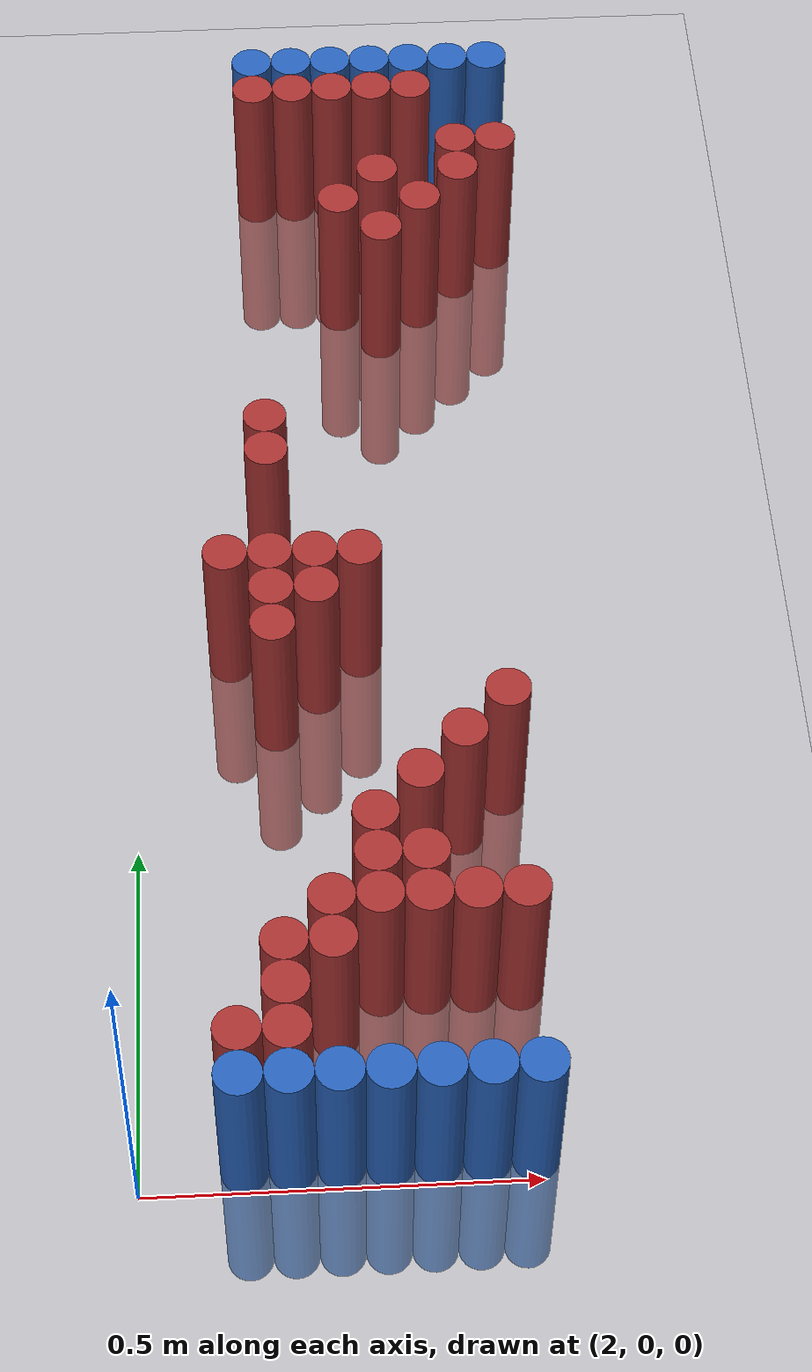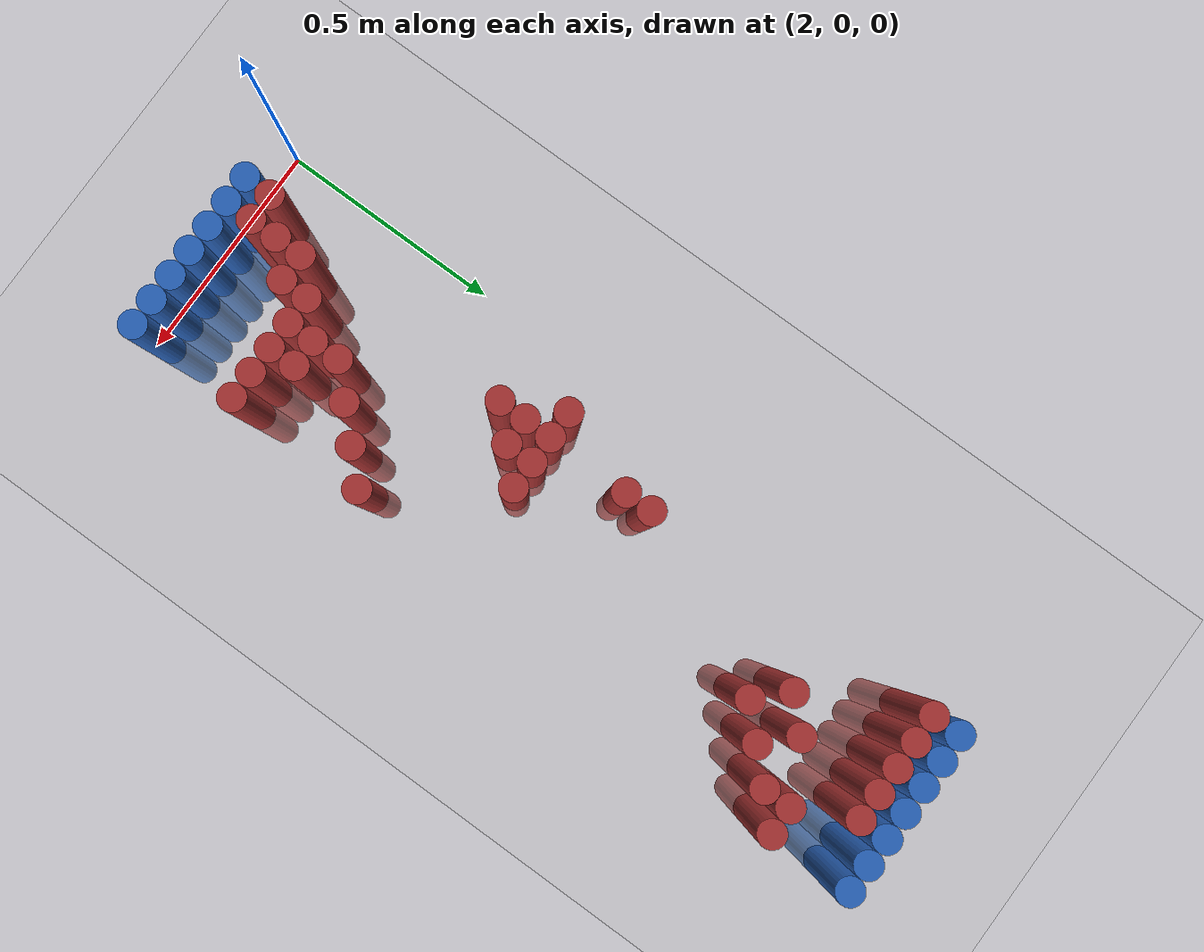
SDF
<sdf version="1.6">
 <world name="default">
  <model name="ground_plane">
   <static>1</static>
   <link name="link">
    <collision name="collision">
     <geometry><plane><normal>0 0 1</normal><size>100 100</size></plane></geometry>
     <surface><friction><ode><mu>100</mu><mu2>50</mu2></ode></friction></surface>
    </collision>
    <visual name="visual">
     <cast_shadows>0</cast_shadows>
     <geometry><plane><normal>0 0 1</normal><size>100 100</size></plane></geometry>
     <material>
      <script><uri>file://media/materials/scripts/gazebo.material</uri><name>Gazebo/Grey</name></script>
     </material>
    </visual>
   </link>
  </model>
  <model name="unit_cylinder_97">
   <static>1</static>
   <pose>2.190000 1.770000 0.000000 0.000000 0.000000 0.000000</pose>
   <link name="link">
    <inertial>
     <mass>1</mass>
     <inertia><ixx>0.145833</ixx><ixy>0</ixy><ixz>0</ixz><iyy>0.145833</iyy><iyz>0</iyz><izz>0.125</izz></inertia>
    </inertial>
    <collision name="collision">
     <geometry><cylinder><radius>0.030000</radius><length>0.5</length></cylinder></geometry>
    </collision>
    <visual name="visual">
     <geometry><cylinder><radius>0.030000</radius><length>0.5</length></cylinder></geometry>
     <material>
      <ambient>0.152000 0.379000 0.720000 1</ambient>
      <diffuse>0.152000 0.379000 0.720000 1</diffuse>
     </material>
     <material>
      <script><name>Gazebo/Grey</name><uri>file://media/materials/scripts/gazebo.material</uri></script>
     </material>
    </visual>
   </link>
  </model>
  <model name="unit_cylinder_98">
   <static>1</static>
   <pose>2.250000 1.770000 0.000000 0.000000 0.000000 0.000000</pose>
   <link name="link">
    <inertial>
     <mass>1</mass>
     <inertia><ixx>0.145833</ixx><ixy>0</ixy><ixz>0</ixz><iyy>0.145833</iyy><iyz>0</iyz><izz>0.125</izz></inertia>
    </inertial>
    <collision name="collision">
     <geometry><cylinder><radius>0.030000</radius><length>0.5</length></cylinder></geometry>
    </collision>
    <visual name="visual">
     <geometry><cylinder><radius>0.030000</radius><length>0.5</length></cylinder></geometry>
     <material>
      <ambient>0.152000 0.379000 0.720000 1</ambient>
      <diffuse>0.152000 0.379000 0.720000 1</diffuse>
     </material>
     <material>
      <script><name>Gazebo/Grey</name><uri>file://media/materials/scripts/gazebo.material</uri></script>
     </material>
    </visual>
   </link>
  </model>
  <model name="unit_cylinder_99">
   <static>1</static>
   <pose>2.310000 1.770000 0.000000 0.000000 0.000000 0.000000</pose>
   <link name="link">
    <inertial>
     <mass>1</mass>
     <inertia><ixx>0.145833</ixx><ixy>0</ixy><ixz>0</ixz><iyy>0.145833</iyy><iyz>0</iyz><izz>0.125</izz></inertia>
    </inertial>
    <collision name="collision">
     <geometry><cylinder><radius>0.030000</radius><length>0.5</length></cylinder></geometry>
    </collision>
    <visual name="visual">
     <geometry><cylinder><radius>0.030000</radius><length>0.5</length></cylinder></geometry>
     <material>
      <ambient>0.152000 0.379000 0.720000 1</ambient>
      <diffuse>0.152000 0.379000 0.720000 1</diffuse>
     </material>
     <material>
      <script><name>Gazebo/Grey</name><uri>file://media/materials/scripts/gazebo.material</uri></script>
     </material>
    </visual>
   </link>
  </model>
  <model name="unit_cylinder_100">
   <static>1</static>
   <pose>2.370000 1.770000 0.000000 0.000000 0.000000 0.000000</pose>
   <link name="link">
    <inertial>
     <mass>1</mass>
     <inertia><ixx>0.145833</ixx><ixy>0</ixy><ixz>0</ixz><iyy>0.145833</iyy><iyz>0</iyz><izz>0.125</izz></inertia>
    </inertial>
    <collision name="collision">
     <geometry><cylinder><radius>0.030000</radius><length>0.5</length></cylinder></geometry>
    </collision>
    <visual name="visual">
     <geometry><cylinder><radius>0.030000</radius><length>0.5</length></cylinder></geometry>
     <material>
      <ambient>0.152000 0.379000 0.720000 1</ambient>
      <diffuse>0.152000 0.379000 0.720000 1</diffuse>
     </material>
     <material>
      <script><name>Gazebo/Grey</name><uri>file://media/materials/scripts/gazebo.material</uri></script>
     </material>
    </visual>
   </link>
  </model>
  <model name="unit_cylinder_101">
   <static>1</static>
   <pose>2.430000 1.770000 0.000000 0.000000 0.000000 0.000000</pose>
   <link name="link">
    <inertial>
     <mass>1</mass>
     <inertia><ixx>0.145833</ixx><ixy>0</ixy><ixz>0</ixz><iyy>0.145833</iyy><iyz>0</iyz><izz>0.125</izz></inertia>
    </inertial>
    <collision name="collision">
     <geometry><cylinder><radius>0.030000</radius><length>0.5</length></cylinder></geometry>
    </collision>
    <visual name="visual">
     <geometry><cylinder><radius>0.030000</radius><length>0.5</length></cylinder></geometry>
     <material>
      <ambient>0.152000 0.379000 0.720000 1</ambient>
      <diffuse>0.152000 0.379000 0.720000 1</diffuse>
     </material>
     <material>
      <script><name>Gazebo/Grey</name><uri>file://media/materials/scripts/gazebo.material</uri></script>
     </material>
    </visual>
   </link>
  </model>
  <model name="unit_cylinder_102">
   <static>1</static>
   <pose>2.490000 1.770000 0.000000 0.000000 0.000000 0.000000</pose>
   <link name="link">
    <inertial>
     <mass>1</mass>
     <inertia><ixx>0.145833</ixx><ixy>0</ixy><ixz>0</ixz><iyy>0.145833</iyy><iyz>0</iyz><izz>0.125</izz></inertia>
    </inertial>
    <collision name="collision">
     <geometry><cylinder><radius>0.030000</radius><length>0.5</length></cylinder></geometry>
    </collision>
    <visual name="visual">
     <geometry><cylinder><radius>0.030000</radius><length>0.5</length></cylinder></geometry>
     <material>
      <ambient>0.152000 0.379000 0.720000 1</ambient>
      <diffuse>0.152000 0.379000 0.720000 1</diffuse>
     </material>
     <material>
      <script><name>Gazebo/Grey</name><uri>file://media/materials/scripts/gazebo.material</uri></script>
     </material>
    </visual>
   </link>
  </model>
  <model name="unit_cylinder_103">
   <static>1</static>
   <pose>2.550000 1.770000 0.000000 0.000000 0.000000 0.000000</pose>
   <link name="link">
    <inertial>
     <mass>1</mass>
     <inertia><ixx>0.145833</ixx><ixy>0</ixy><ixz>0</ixz><iyy>0.145833</iyy><iyz>0</iyz><izz>0.125</izz></inertia>
    </inertial>
    <collision name="collision">
     <geometry><cylinder><radius>0.030000</radius><length>0.5</length></cylinder></geometry>
    </collision>
    <visual name="visual">
     <geometry><cylinder><radius>0.030000</radius><length>0.5</length></cylinder></geometry>
     <material>
      <ambient>0.152000 0.379000 0.720000 1</ambient>
      <diffuse>0.152000 0.379000 0.720000 1</diffuse>
     </material>
     <material>
      <script><name>Gazebo/Grey</name><uri>file://media/materials/scripts/gazebo.material</uri></script>
     </material>
    </visual>
   </link>
  </model>
  <model name="unit_cylinder_126">
   <static>1</static>
   <pose>2.190000 1.710000 0.000000 0.000000 0.000000 0.000000</pose>
   <link name="link">
    <inertial>
     <mass>1</mass>
     <inertia><ixx>0.145833</ixx><ixy>0</ixy><ixz>0</ixz><iyy>0.145833</iyy><iyz>0</iyz><izz>0.125</izz></inertia>
    </inertial>
    <collision name="collision">
     <geometry><cylinder><radius>0.030000</radius><length>0.5</length></cylinder></geometry>
    </collision>
    <visual name="visual">
     <geometry><cylinder><radius>0.030000</radius><length>0.5</length></cylinder></geometry>
     <material>
      <ambient>0.648000 0.192000 0.192000 1</ambient>
      <diffuse>0.648000 0.192000 0.192000 1</diffuse>
     </material>
     <material>
      <script><name>Gazebo/Grey</name><uri>file://media/materials/scripts/gazebo.material</uri></script>
     </material>
    </visual>
   </link>
  </model>
  <model name="unit_cylinder_127">
   <static>1</static>
   <pose>2.250000 1.710000 0.000000 0.000000 0.000000 0.000000</pose>
   <link name="link">
    <inertial>
     <mass>1</mass>
     <inertia><ixx>0.145833</ixx><ixy>0</ixy><ixz>0</ixz><iyy>0.145833</iyy><iyz>0</iyz><izz>0.125</izz></inertia>
    </inertial>
    <collision name="collision">
     <geometry><cylinder><radius>0.030000</radius><length>0.5</length></cylinder></geometry>
    </collision>
    <visual name="visual">
     <geometry><cylinder><radius>0.030000</radius><length>0.5</length></cylinder></geometry>
     <material>
      <ambient>0.648000 0.192000 0.192000 1</ambient>
      <diffuse>0.648000 0.192000 0.192000 1</diffuse>
     </material>
     <material>
      <script><name>Gazebo/Grey</name><uri>file://media/materials/scripts/gazebo.material</uri></script>
     </material>
    </visual>
   </link>
  </model>
  <model name="unit_cylinder_128">
   <static>1</static>
   <pose>2.310000 1.710000 0.000000 0.000000 0.000000 0.000000</pose>
   <link name="link">
    <inertial>
     <mass>1</mass>
     <inertia><ixx>0.145833</ixx><ixy>0</ixy><ixz>0</ixz><iyy>0.145833</iyy><iyz>0</iyz><izz>0.125</izz></inertia>
    </inertial>
    <collision name="collision">
     <geometry><cylinder><radius>0.030000</radius><length>0.5</length></cylinder></geometry>
    </collision>
    <visual name="visual">
     <geometry><cylinder><radius>0.030000</radius><length>0.5</length></cylinder></geometry>
     <material>
      <ambient>0.648000 0.192000 0.192000 1</ambient>
      <diffuse>0.648000 0.192000 0.192000 1</diffuse>
     </material>
     <material>
      <script><name>Gazebo/Grey</name><uri>file://media/materials/scripts/gazebo.material</uri></script>
     </material>
    </visual>
   </link>
  </model>
  <model name="unit_cylinder_129">
   <static>1</static>
   <pose>2.370000 1.710000 0.000000 0.000000 0.000000 0.000000</pose>
   <link name="link">
    <inertial>
     <mass>1</mass>
     <inertia><ixx>0.145833</ixx><ixy>0</ixy><ixz>0</ixz><iyy>0.145833</iyy><iyz>0</iyz><izz>0.125</izz></inertia>
    </inertial>
    <collision name="collision">
     <geometry><cylinder><radius>0.030000</radius><length>0.5</length></cylinder></geometry>
    </collision>
    <visual name="visual">
     <geometry><cylinder><radius>0.030000</radius><length>0.5</length></cylinder></geometry>
     <material>
      <ambient>0.648000 0.192000 0.192000 1</ambient>
      <diffuse>0.648000 0.192000 0.192000 1</diffuse>
     </material>
     <material>
      <script><name>Gazebo/Grey</name><uri>file://media/materials/scripts/gazebo.material</uri></script>
     </material>
    </visual>
   </link>
  </model>
  <model name="unit_cylinder_130">
   <static>1</static>
   <pose>2.430000 1.710000 0.000000 0.000000 0.000000 0.000000</pose>
   <link name="link">
    <inertial>
     <mass>1</mass>
     <inertia><ixx>0.145833</ixx><ixy>0</ixy><ixz>0</ixz><iyy>0.145833</iyy><iyz>0</iyz><izz>0.125</izz></inertia>
    </inertial>
    <collision name="collision">
     <geometry><cylinder><radius>0.030000</radius><length>0.5</length></cylinder></geometry>
    </collision>
    <visual name="visual">
     <geometry><cylinder><radius>0.030000</radius><length>0.5</length></cylinder></geometry>
     <material>
      <ambient>0.648000 0.192000 0.192000 1</ambient>
      <diffuse>0.648000 0.192000 0.192000 1</diffuse>
     </material>
     <material>
      <script><name>Gazebo/Grey</name><uri>file://media/materials/scripts/gazebo.material</uri></script>
     </material>
    </visual>
   </link>
  </model>
  <model name="unit_cylinder_154">
   <static>1</static>
   <pose>2.490000 1.590000 0.000000 0.000000 0.000000 0.000000</pose>
   <link name="link">
    <inertial>
     <mass>1</mass>
     <inertia><ixx>0.145833</ixx><ixy>0</ixy><ixz>0</ixz><iyy>0.145833</iyy><iyz>0</iyz><izz>0.125</izz></inertia>
    </inertial>
    <collision name="collision">
     <geometry><cylinder><radius>0.030000</radius><length>0.5</length></cylinder></geometry>
    </collision>
    <visual name="visual">
     <geometry><cylinder><radius>0.030000</radius><length>0.5</length></cylinder></geometry>
     <material>
      <ambient>0.648000 0.192000 0.192000 1</ambient>
      <diffuse>0.648000 0.192000 0.192000 1</diffuse>
     </material>
     <material>
      <script><name>Gazebo/Grey</name><uri>file://media/materials/scripts/gazebo.material</uri></script>
     </material>
    </visual>
   </link>
  </model>
  <model name="unit_cylinder_155">
   <static>1</static>
   <pose>2.550000 1.590000 0.000000 0.000000 0.000000 0.000000</pose>
   <link name="link">
    <inertial>
     <mass>1</mass>
     <inertia><ixx>0.145833</ixx><ixy>0</ixy><ixz>0</ixz><iyy>0.145833</iyy><iyz>0</iyz><izz>0.125</izz></inertia>
    </inertial>
    <collision name="collision">
     <geometry><cylinder><radius>0.030000</radius><length>0.5</length></cylinder></geometry>
    </collision>
    <visual name="visual">
     <geometry><cylinder><radius>0.030000</radius><length>0.5</length></cylinder></geometry>
     <material>
      <ambient>0.648000 0.192000 0.192000 1</ambient>
      <diffuse>0.648000 0.192000 0.192000 1</diffuse>
     </material>
     <material>
      <script><name>Gazebo/Grey</name><uri>file://media/materials/scripts/gazebo.material</uri></script>
     </material>
    </visual>
   </link>
  </model>
  <model name="unit_cylinder_163">
   <static>1</static>
   <pose>2.370000 1.530000 0.000000 0.000000 0.000000 0.000000</pose>
   <link name="link">
    <inertial>
     <mass>1</mass>
     <inertia><ixx>0.145833</ixx><ixy>0</ixy><ixz>0</ixz><iyy>0.145833</iyy><iyz>0</iyz><izz>0.125</izz></inertia>
    </inertial>
    <collision name="collision">
     <geometry><cylinder><radius>0.030000</radius><length>0.5</length></cylinder></geometry>
    </collision>
    <visual name="visual">
     <geometry><cylinder><radius>0.030000</radius><length>0.5</length></cylinder></geometry>
     <material>
      <ambient>0.648000 0.192000 0.192000 1</ambient>
      <diffuse>0.648000 0.192000 0.192000 1</diffuse>
     </material>
     <material>
      <script><name>Gazebo/Grey</name><uri>file://media/materials/scripts/gazebo.material</uri></script>
     </material>
    </visual>
   </link>
  </model>
  <model name="unit_cylinder_164">
   <static>1</static>
   <pose>2.490000 1.530000 0.000000 0.000000 0.000000 0.000000</pose>
   <link name="link">
    <inertial>
     <mass>1</mass>
     <inertia><ixx>0.145833</ixx><ixy>0</ixy><ixz>0</ixz><iyy>0.145833</iyy><iyz>0</iyz><izz>0.125</izz></inertia>
    </inertial>
    <collision name="collision">
     <geometry><cylinder><radius>0.030000</radius><length>0.5</length></cylinder></geometry>
    </collision>
    <visual name="visual">
     <geometry><cylinder><radius>0.030000</radius><length>0.5</length></cylinder></geometry>
     <material>
      <ambient>0.648000 0.192000 0.192000 1</ambient>
      <diffuse>0.648000 0.192000 0.192000 1</diffuse>
     </material>
     <material>
      <script><name>Gazebo/Grey</name><uri>file://media/materials/scripts/gazebo.material</uri></script>
     </material>
    </visual>
   </link>
  </model>
  <model name="unit_cylinder_173">
   <static>1</static>
   <pose>2.310000 1.470000 0.000000 0.000000 0.000000 0.000000</pose>
   <link name="link">
    <inertial>
     <mass>1</mass>
     <inertia><ixx>0.145833</ixx><ixy>0</ixy><ixz>0</ixz><iyy>0.145833</iyy><iyz>0</iyz><izz>0.125</izz></inertia>
    </inertial>
    <collision name="collision">
     <geometry><cylinder><radius>0.030000</radius><length>0.5</length></cylinder></geometry>
    </collision>
    <visual name="visual">
     <geometry><cylinder><radius>0.030000</radius><length>0.5</length></cylinder></geometry>
     <material>
      <ambient>0.648000 0.192000 0.192000 1</ambient>
      <diffuse>0.648000 0.192000 0.192000 1</diffuse>
     </material>
     <material>
      <script><name>Gazebo/Grey</name><uri>file://media/materials/scripts/gazebo.material</uri></script>
     </material>
    </visual>
   </link>
  </model>
  <model name="unit_cylinder_174">
   <static>1</static>
   <pose>2.430000 1.470000 0.000000 0.000000 0.000000 0.000000</pose>
   <link name="link">
    <inertial>
     <mass>1</mass>
     <inertia><ixx>0.145833</ixx><ixy>0</ixy><ixz>0</ixz><iyy>0.145833</iyy><iyz>0</iyz><izz>0.125</izz></inertia>
    </inertial>
    <collision name="collision">
     <geometry><cylinder><radius>0.030000</radius><length>0.5</length></cylinder></geometry>
    </collision>
    <visual name="visual">
     <geometry><cylinder><radius>0.030000</radius><length>0.5</length></cylinder></geometry>
     <material>
      <ambient>0.648000 0.192000 0.192000 1</ambient>
      <diffuse>0.648000 0.192000 0.192000 1</diffuse>
     </material>
     <material>
      <script><name>Gazebo/Grey</name><uri>file://media/materials/scripts/gazebo.material</uri></script>
     </material>
    </visual>
   </link>
  </model>
  <model name="unit_cylinder_181">
   <static>1</static>
   <pose>2.370000 1.410000 0.000000 0.000000 0.000000 0.000000</pose>
   <link name="link">
    <inertial>
     <mass>1</mass>
     <inertia><ixx>0.145833</ixx><ixy>0</ixy><ixz>0</ixz><iyy>0.145833</iyy><iyz>0</iyz><izz>0.125</izz></inertia>
    </inertial>
    <collision name="collision">
     <geometry><cylinder><radius>0.030000</radius><length>0.5</length></cylinder></geometry>
    </collision>
    <visual name="visual">
     <geometry><cylinder><radius>0.030000</radius><length>0.5</length></cylinder></geometry>
     <material>
      <ambient>0.648000 0.192000 0.192000 1</ambient>
      <diffuse>0.648000 0.192000 0.192000 1</diffuse>
     </material>
     <material>
      <script><name>Gazebo/Grey</name><uri>file://media/materials/scripts/gazebo.material</uri></script>
     </material>
    </visual>
   </link>
  </model>
  <model name="unit_cylinder_193">
   <static>1</static>
   <pose>2.190000 1.050000 0.000000 0.000000 0.000000 0.000000</pose>
   <link name="link">
    <inertial>
     <mass>1</mass>
     <inertia><ixx>0.145833</ixx><ixy>0</ixy><ixz>0</ixz><iyy>0.145833</iyy><iyz>0</iyz><izz>0.125</izz></inertia>
    </inertial>
    <collision name="collision">
     <geometry><cylinder><radius>0.030000</radius><length>0.5</length></cylinder></geometry>
    </collision>
    <visual name="visual">
     <geometry><cylinder><radius>0.030000</radius><length>0.5</length></cylinder></geometry>
     <material>
      <ambient>0.648000 0.192000 0.192000 1</ambient>
      <diffuse>0.648000 0.192000 0.192000 1</diffuse>
     </material>
     <material>
      <script><name>Gazebo/Grey</name><uri>file://media/materials/scripts/gazebo.material</uri></script>
     </material>
    </visual>
   </link>
  </model>
  <model name="unit_cylinder_197">
   <static>1</static>
   <pose>2.190000 0.990000 0.000000 0.000000 0.000000 0.000000</pose>
   <link name="link">
    <inertial>
     <mass>1</mass>
     <inertia><ixx>0.145833</ixx><ixy>0</ixy><ixz>0</ixz><iyy>0.145833</iyy><iyz>0</iyz><izz>0.125</izz></inertia>
    </inertial>
    <collision name="collision">
     <geometry><cylinder><radius>0.030000</radius><length>0.5</length></cylinder></geometry>
    </collision>
    <visual name="visual">
     <geometry><cylinder><radius>0.030000</radius><length>0.5</length></cylinder></geometry>
     <material>
      <ambient>0.648000 0.192000 0.192000 1</ambient>
      <diffuse>0.648000 0.192000 0.192000 1</diffuse>
     </material>
     <material>
      <script><name>Gazebo/Grey</name><uri>file://media/materials/scripts/gazebo.material</uri></script>
     </material>
    </visual>
   </link>
  </model>
  <model name="unit_cylinder_204">
   <static>1</static>
   <pose>2.130000 0.810000 0.000000 0.000000 0.000000 0.000000</pose>
   <link name="link">
    <inertial>
     <mass>1</mass>
     <inertia><ixx>0.145833</ixx><ixy>0</ixy><ixz>0</ixz><iyy>0.145833</iyy><iyz>0</iyz><izz>0.125</izz></inertia>
    </inertial>
    <collision name="collision">
     <geometry><cylinder><radius>0.030000</radius><length>0.5</length></cylinder></geometry>
    </collision>
    <visual name="visual">
     <geometry><cylinder><radius>0.030000</radius><length>0.5</length></cylinder></geometry>
     <material>
      <ambient>0.648000 0.192000 0.192000 1</ambient>
      <diffuse>0.648000 0.192000 0.192000 1</diffuse>
     </material>
     <material>
      <script><name>Gazebo/Grey</name><uri>file://media/materials/scripts/gazebo.material</uri></script>
     </material>
    </visual>
   </link>
  </model>
  <model name="unit_cylinder_205">
   <static>1</static>
   <pose>2.190000 0.810000 0.000000 0.000000 0.000000 0.000000</pose>
   <link name="link">
    <inertial>
     <mass>1</mass>
     <inertia><ixx>0.145833</ixx><ixy>0</ixy><ixz>0</ixz><iyy>0.145833</iyy><iyz>0</iyz><izz>0.125</izz></inertia>
    </inertial>
    <collision name="collision">
     <geometry><cylinder><radius>0.030000</radius><length>0.5</length></cylinder></geometry>
    </collision>
    <visual name="visual">
     <geometry><cylinder><radius>0.030000</radius><length>0.5</length></cylinder></geometry>
     <material>
      <ambient>0.648000 0.192000 0.192000 1</ambient>
      <diffuse>0.648000 0.192000 0.192000 1</diffuse>
     </material>
     <material>
      <script><name>Gazebo/Grey</name><uri>file://media/materials/scripts/gazebo.material</uri></script>
     </material>
    </visual>
   </link>
  </model>
  <model name="unit_cylinder_206">
   <static>1</static>
   <pose>2.250000 0.810000 0.000000 0.000000 0.000000 0.000000</pose>
   <link name="link">
    <inertial>
     <mass>1</mass>
     <inertia><ixx>0.145833</ixx><ixy>0</ixy><ixz>0</ixz><iyy>0.145833</iyy><iyz>0</iyz><izz>0.125</izz></inertia>
    </inertial>
    <collision name="collision">
     <geometry><cylinder><radius>0.030000</radius><length>0.5</length></cylinder></geometry>
    </collision>
    <visual name="visual">
     <geometry><cylinder><radius>0.030000</radius><length>0.5</length></cylinder></geometry>
     <material>
      <ambient>0.648000 0.192000 0.192000 1</ambient>
      <diffuse>0.648000 0.192000 0.192000 1</diffuse>
     </material>
     <material>
      <script><name>Gazebo/Grey</name><uri>file://media/materials/scripts/gazebo.material</uri></script>
     </material>
    </visual>
   </link>
  </model>
  <model name="unit_cylinder_207">
   <static>1</static>
   <pose>2.310000 0.810000 0.000000 0.000000 0.000000 0.000000</pose>
   <link name="link">
    <inertial>
     <mass>1</mass>
     <inertia><ixx>0.145833</ixx><ixy>0</ixy><ixz>0</ixz><iyy>0.145833</iyy><iyz>0</iyz><izz>0.125</izz></inertia>
    </inertial>
    <collision name="collision">
     <geometry><cylinder><radius>0.030000</radius><length>0.5</length></cylinder></geometry>
    </collision>
    <visual name="visual">
     <geometry><cylinder><radius>0.030000</radius><length>0.5</length></cylinder></geometry>
     <material>
      <ambient>0.648000 0.192000 0.192000 1</ambient>
      <diffuse>0.648000 0.192000 0.192000 1</diffuse>
     </material>
     <material>
      <script><name>Gazebo/Grey</name><uri>file://media/materials/scripts/gazebo.material</uri></script>
     </material>
    </visual>
   </link>
  </model>
  <model name="unit_cylinder_210">
   <static>1</static>
   <pose>2.190000 0.750000 0.000000 0.000000 0.000000 0.000000</pose>
   <link name="link">
    <inertial>
     <mass>1</mass>
     <inertia><ixx>0.145833</ixx><ixy>0</ixy><ixz>0</ixz><iyy>0.145833</iyy><iyz>0</iyz><izz>0.125</izz></inertia>
    </inertial>
    <collision name="collision">
     <geometry><cylinder><radius>0.030000</radius><length>0.5</length></cylinder></geometry>
    </collision>
    <visual name="visual">
     <geometry><cylinder><radius>0.030000</radius><length>0.5</length></cylinder></geometry>
     <material>
      <ambient>0.648000 0.192000 0.192000 1</ambient>
      <diffuse>0.648000 0.192000 0.192000 1</diffuse>
     </material>
     <material>
      <script><name>Gazebo/Grey</name><uri>file://media/materials/scripts/gazebo.material</uri></script>
     </material>
    </visual>
   </link>
  </model>
  <model name="unit_cylinder_211">
   <static>1</static>
   <pose>2.250000 0.750000 0.000000 0.000000 0.000000 0.000000</pose>
   <link name="link">
    <inertial>
     <mass>1</mass>
     <inertia><ixx>0.145833</ixx><ixy>0</ixy><ixz>0</ixz><iyy>0.145833</iyy><iyz>0</iyz><izz>0.125</izz></inertia>
    </inertial>
    <collision name="collision">
     <geometry><cylinder><radius>0.030000</radius><length>0.5</length></cylinder></geometry>
    </collision>
    <visual name="visual">
     <geometry><cylinder><radius>0.030000</radius><length>0.5</length></cylinder></geometry>
     <material>
      <ambient>0.648000 0.192000 0.192000 1</ambient>
      <diffuse>0.648000 0.192000 0.192000 1</diffuse>
     </material>
     <material>
      <script><name>Gazebo/Grey</name><uri>file://media/materials/scripts/gazebo.material</uri></script>
     </material>
    </visual>
   </link>
  </model>
  <model name="unit_cylinder_216">
   <static>1</static>
   <pose>2.190000 0.690000 0.000000 0.000000 0.000000 0.000000</pose>
   <link name="link">
    <inertial>
     <mass>1</mass>
     <inertia><ixx>0.145833</ixx><ixy>0</ixy><ixz>0</ixz><iyy>0.145833</iyy><iyz>0</iyz><izz>0.125</izz></inertia>
    </inertial>
    <collision name="collision">
     <geometry><cylinder><radius>0.030000</radius><length>0.5</length></cylinder></geometry>
    </collision>
    <visual name="visual">
     <geometry><cylinder><radius>0.030000</radius><length>0.5</length></cylinder></geometry>
     <material>
      <ambient>0.648000 0.192000 0.192000 1</ambient>
      <diffuse>0.648000 0.192000 0.192000 1</diffuse>
     </material>
     <material>
      <script><name>Gazebo/Grey</name><uri>file://media/materials/scripts/gazebo.material</uri></script>
     </material>
    </visual>
   </link>
  </model>
  <model name="unit_cylinder_237">
   <static>1</static>
   <pose>2.490000 0.570000 0.000000 0.000000 0.000000 0.000000</pose>
   <link name="link">
    <inertial>
     <mass>1</mass>
     <inertia><ixx>0.145833</ixx><ixy>0</ixy><ixz>0</ixz><iyy>0.145833</iyy><iyz>0</iyz><izz>0.125</izz></inertia>
    </inertial>
    <collision name="collision">
     <geometry><cylinder><radius>0.030000</radius><length>0.5</length></cylinder></geometry>
    </collision>
    <visual name="visual">
     <geometry><cylinder><radius>0.030000</radius><length>0.5</length></cylinder></geometry>
     <material>
      <ambient>0.648000 0.192000 0.192000 1</ambient>
      <diffuse>0.648000 0.192000 0.192000 1</diffuse>
     </material>
     <material>
      <script><name>Gazebo/Grey</name><uri>file://media/materials/scripts/gazebo.material</uri></script>
     </material>
    </visual>
   </link>
  </model>
  <model name="unit_cylinder_249">
   <static>1</static>
   <pose>2.430000 0.510000 0.000000 0.000000 0.000000 0.000000</pose>
   <link name="link">
    <inertial>
     <mass>1</mass>
     <inertia><ixx>0.145833</ixx><ixy>0</ixy><ixz>0</ixz><iyy>0.145833</iyy><iyz>0</iyz><izz>0.125</izz></inertia>
    </inertial>
    <collision name="collision">
     <geometry><cylinder><radius>0.030000</radius><length>0.5</length></cylinder></geometry>
    </collision>
    <visual name="visual">
     <geometry><cylinder><radius>0.030000</radius><length>0.5</length></cylinder></geometry>
     <material>
      <ambient>0.648000 0.192000 0.192000 1</ambient>
      <diffuse>0.648000 0.192000 0.192000 1</diffuse>
     </material>
     <material>
      <script><name>Gazebo/Grey</name><uri>file://media/materials/scripts/gazebo.material</uri></script>
     </material>
    </visual>
   </link>
  </model>
  <model name="unit_cylinder_260">
   <static>1</static>
   <pose>2.370000 0.450000 0.000000 0.000000 0.000000 0.000000</pose>
   <link name="link">
    <inertial>
     <mass>1</mass>
     <inertia><ixx>0.145833</ixx><ixy>0</ixy><ixz>0</ixz><iyy>0.145833</iyy><iyz>0</iyz><izz>0.125</izz></inertia>
    </inertial>
    <collision name="collision">
     <geometry><cylinder><radius>0.030000</radius><length>0.5</length></cylinder></geometry>
    </collision>
    <visual name="visual">
     <geometry><cylinder><radius>0.030000</radius><length>0.5</length></cylinder></geometry>
     <material>
      <ambient>0.648000 0.192000 0.192000 1</ambient>
      <diffuse>0.648000 0.192000 0.192000 1</diffuse>
     </material>
     <material>
      <script><name>Gazebo/Grey</name><uri>file://media/materials/scripts/gazebo.material</uri></script>
     </material>
    </visual>
   </link>
  </model>
  <model name="unit_cylinder_267">
   <static>1</static>
   <pose>2.310000 0.390000 0.000000 0.000000 0.000000 0.000000</pose>
   <link name="link">
    <inertial>
     <mass>1</mass>
     <inertia><ixx>0.145833</ixx><ixy>0</ixy><ixz>0</ixz><iyy>0.145833</iyy><iyz>0</iyz><izz>0.125</izz></inertia>
    </inertial>
    <collision name="collision">
     <geometry><cylinder><radius>0.030000</radius><length>0.5</length></cylinder></geometry>
    </collision>
    <visual name="visual">
     <geometry><cylinder><radius>0.030000</radius><length>0.5</length></cylinder></geometry>
     <material>
      <ambient>0.648000 0.192000 0.192000 1</ambient>
      <diffuse>0.648000 0.192000 0.192000 1</diffuse>
     </material>
     <material>
      <script><name>Gazebo/Grey</name><uri>file://media/materials/scripts/gazebo.material</uri></script>
     </material>
    </visual>
   </link>
  </model>
  <model name="unit_cylinder_272">
   <static>1</static>
   <pose>2.310000 0.330000 0.000000 0.000000 0.000000 0.000000</pose>
   <link name="link">
    <inertial>
     <mass>1</mass>
     <inertia><ixx>0.145833</ixx><ixy>0</ixy><ixz>0</ixz><iyy>0.145833</iyy><iyz>0</iyz><izz>0.125</izz></inertia>
    </inertial>
    <collision name="collision">
     <geometry><cylinder><radius>0.030000</radius><length>0.5</length></cylinder></geometry>
    </collision>
    <visual name="visual">
     <geometry><cylinder><radius>0.030000</radius><length>0.5</length></cylinder></geometry>
     <material>
      <ambient>0.648000 0.192000 0.192000 1</ambient>
      <diffuse>0.648000 0.192000 0.192000 1</diffuse>
     </material>
     <material>
      <script><name>Gazebo/Grey</name><uri>file://media/materials/scripts/gazebo.material</uri></script>
     </material>
    </visual>
   </link>
  </model>
  <model name="unit_cylinder_273">
   <static>1</static>
   <pose>2.370000 0.330000 0.000000 0.000000 0.000000 0.000000</pose>
   <link name="link">
    <inertial>
     <mass>1</mass>
     <inertia><ixx>0.145833</ixx><ixy>0</ixy><ixz>0</ixz><iyy>0.145833</iyy><iyz>0</iyz><izz>0.125</izz></inertia>
    </inertial>
    <collision name="collision">
     <geometry><cylinder><radius>0.030000</radius><length>0.5</length></cylinder></geometry>
    </collision>
    <visual name="visual">
     <geometry><cylinder><radius>0.030000</radius><length>0.5</length></cylinder></geometry>
     <material>
      <ambient>0.648000 0.192000 0.192000 1</ambient>
      <diffuse>0.648000 0.192000 0.192000 1</diffuse>
     </material>
     <material>
      <script><name>Gazebo/Grey</name><uri>file://media/materials/scripts/gazebo.material</uri></script>
     </material>
    </visual>
   </link>
  </model>
  <model name="unit_cylinder_278">
   <static>1</static>
   <pose>2.250000 0.270000 0.000000 0.000000 0.000000 0.000000</pose>
   <link name="link">
    <inertial>
     <mass>1</mass>
     <inertia><ixx>0.145833</ixx><ixy>0</ixy><ixz>0</ixz><iyy>0.145833</iyy><iyz>0</iyz><izz>0.125</izz></inertia>
    </inertial>
    <collision name="collision">
     <geometry><cylinder><radius>0.030000</radius><length>0.5</length></cylinder></geometry>
    </collision>
    <visual name="visual">
     <geometry><cylinder><radius>0.030000</radius><length>0.5</length></cylinder></geometry>
     <material>
      <ambient>0.648000 0.192000 0.192000 1</ambient>
      <diffuse>0.648000 0.192000 0.192000 1</diffuse>
     </material>
     <material>
      <script><name>Gazebo/Grey</name><uri>file://media/materials/scripts/gazebo.material</uri></script>
     </material>
    </visual>
   </link>
  </model>
  <model name="unit_cylinder_279">
   <static>1</static>
   <pose>2.310000 0.270000 0.000000 0.000000 0.000000 0.000000</pose>
   <link name="link">
    <inertial>
     <mass>1</mass>
     <inertia><ixx>0.145833</ixx><ixy>0</ixy><ixz>0</ixz><iyy>0.145833</iyy><iyz>0</iyz><izz>0.125</izz></inertia>
    </inertial>
    <collision name="collision">
     <geometry><cylinder><radius>0.030000</radius><length>0.5</length></cylinder></geometry>
    </collision>
    <visual name="visual">
     <geometry><cylinder><radius>0.030000</radius><length>0.5</length></cylinder></geometry>
     <material>
      <ambient>0.648000 0.192000 0.192000 1</ambient>
      <diffuse>0.648000 0.192000 0.192000 1</diffuse>
     </material>
     <material>
      <script><name>Gazebo/Grey</name><uri>file://media/materials/scripts/gazebo.material</uri></script>
     </material>
    </visual>
   </link>
  </model>
  <model name="unit_cylinder_280">
   <static>1</static>
   <pose>2.370000 0.270000 0.000000 0.000000 0.000000 0.000000</pose>
   <link name="link">
    <inertial>
     <mass>1</mass>
     <inertia><ixx>0.145833</ixx><ixy>0</ixy><ixz>0</ixz><iyy>0.145833</iyy><iyz>0</iyz><izz>0.125</izz></inertia>
    </inertial>
    <collision name="collision">
     <geometry><cylinder><radius>0.030000</radius><length>0.5</length></cylinder></geometry>
    </collision>
    <visual name="visual">
     <geometry><cylinder><radius>0.030000</radius><length>0.5</length></cylinder></geometry>
     <material>
      <ambient>0.648000 0.192000 0.192000 1</ambient>
      <diffuse>0.648000 0.192000 0.192000 1</diffuse>
     </material>
     <material>
      <script><name>Gazebo/Grey</name><uri>file://media/materials/scripts/gazebo.material</uri></script>
     </material>
    </visual>
   </link>
  </model>
  <model name="unit_cylinder_281">
   <static>1</static>
   <pose>2.430000 0.270000 0.000000 0.000000 0.000000 0.000000</pose>
   <link name="link">
    <inertial>
     <mass>1</mass>
     <inertia><ixx>0.145833</ixx><ixy>0</ixy><ixz>0</ixz><iyy>0.145833</iyy><iyz>0</iyz><izz>0.125</izz></inertia>
    </inertial>
    <collision name="collision">
     <geometry><cylinder><radius>0.030000</radius><length>0.5</length></cylinder></geometry>
    </collision>
    <visual name="visual">
     <geometry><cylinder><radius>0.030000</radius><length>0.5</length></cylinder></geometry>
     <material>
      <ambient>0.648000 0.192000 0.192000 1</ambient>
      <diffuse>0.648000 0.192000 0.192000 1</diffuse>
     </material>
     <material>
      <script><name>Gazebo/Grey</name><uri>file://media/materials/scripts/gazebo.material</uri></script>
     </material>
    </visual>
   </link>
  </model>
  <model name="unit_cylinder_282">
   <static>1</static>
   <pose>2.490000 0.270000 0.000000 0.000000 0.000000 0.000000</pose>
   <link name="link">
    <inertial>
     <mass>1</mass>
     <inertia><ixx>0.145833</ixx><ixy>0</ixy><ixz>0</ixz><iyy>0.145833</iyy><iyz>0</iyz><izz>0.125</izz></inertia>
    </inertial>
    <collision name="collision">
     <geometry><cylinder><radius>0.030000</radius><length>0.5</length></cylinder></geometry>
    </collision>
    <visual name="visual">
     <geometry><cylinder><radius>0.030000</radius><length>0.5</length></cylinder></geometry>
     <material>
      <ambient>0.648000 0.192000 0.192000 1</ambient>
      <diffuse>0.648000 0.192000 0.192000 1</diffuse>
     </material>
     <material>
      <script><name>Gazebo/Grey</name><uri>file://media/materials/scripts/gazebo.material</uri></script>
     </material>
    </visual>
   </link>
  </model>
  <model name="unit_cylinder_291">
   <static>1</static>
   <pose>2.190000 0.210000 0.000000 0.000000 0.000000 0.000000</pose>
   <link name="link">
    <inertial>
     <mass>1</mass>
     <inertia><ixx>0.145833</ixx><ixy>0</ixy><ixz>0</ixz><iyy>0.145833</iyy><iyz>0</iyz><izz>0.125</izz></inertia>
    </inertial>
    <collision name="collision">
     <geometry><cylinder><radius>0.030000</radius><length>0.5</length></cylinder></geometry>
    </collision>
    <visual name="visual">
     <geometry><cylinder><radius>0.030000</radius><length>0.5</length></cylinder></geometry>
     <material>
      <ambient>0.648000 0.192000 0.192000 1</ambient>
      <diffuse>0.648000 0.192000 0.192000 1</diffuse>
     </material>
     <material>
      <script><name>Gazebo/Grey</name><uri>file://media/materials/scripts/gazebo.material</uri></script>
     </material>
    </visual>
   </link>
  </model>
  <model name="unit_cylinder_292">
   <static>1</static>
   <pose>2.250000 0.210000 0.000000 0.000000 0.000000 0.000000</pose>
   <link name="link">
    <inertial>
     <mass>1</mass>
     <inertia><ixx>0.145833</ixx><ixy>0</ixy><ixz>0</ixz><iyy>0.145833</iyy><iyz>0</iyz><izz>0.125</izz></inertia>
    </inertial>
    <collision name="collision">
     <geometry><cylinder><radius>0.030000</radius><length>0.5</length></cylinder></geometry>
    </collision>
    <visual name="visual">
     <geometry><cylinder><radius>0.030000</radius><length>0.5</length></cylinder></geometry>
     <material>
      <ambient>0.648000 0.192000 0.192000 1</ambient>
      <diffuse>0.648000 0.192000 0.192000 1</diffuse>
     </material>
     <material>
      <script><name>Gazebo/Grey</name><uri>file://media/materials/scripts/gazebo.material</uri></script>
     </material>
    </visual>
   </link>
  </model>
  <model name="unit_cylinder_299">
   <static>1</static>
   <pose>2.190000 0.150000 0.000000 0.000000 0.000000 0.000000</pose>
   <link name="link">
    <inertial>
     <mass>1</mass>
     <inertia><ixx>0.145833</ixx><ixy>0</ixy><ixz>0</ixz><iyy>0.145833</iyy><iyz>0</iyz><izz>0.125</izz></inertia>
    </inertial>
    <collision name="collision">
     <geometry><cylinder><radius>0.030000</radius><length>0.5</length></cylinder></geometry>
    </collision>
    <visual name="visual">
     <geometry><cylinder><radius>0.030000</radius><length>0.5</length></cylinder></geometry>
     <material>
      <ambient>0.648000 0.192000 0.192000 1</ambient>
      <diffuse>0.648000 0.192000 0.192000 1</diffuse>
     </material>
     <material>
      <script><name>Gazebo/Grey</name><uri>file://media/materials/scripts/gazebo.material</uri></script>
     </material>
    </visual>
   </link>
  </model>
  <model name="unit_cylinder_307">
   <static>1</static>
   <pose>2.130000 0.090000 0.000000 0.000000 0.000000 0.000000</pose>
   <link name="link">
    <inertial>
     <mass>1</mass>
     <inertia><ixx>0.145833</ixx><ixy>0</ixy><ixz>0</ixz><iyy>0.145833</iyy><iyz>0</iyz><izz>0.125</izz></inertia>
    </inertial>
    <collision name="collision">
     <geometry><cylinder><radius>0.030000</radius><length>0.5</length></cylinder></geometry>
    </collision>
    <visual name="visual">
     <geometry><cylinder><radius>0.030000</radius><length>0.5</length></cylinder></geometry>
     <material>
      <ambient>0.648000 0.192000 0.192000 1</ambient>
      <diffuse>0.648000 0.192000 0.192000 1</diffuse>
     </material>
     <material>
      <script><name>Gazebo/Grey</name><uri>file://media/materials/scripts/gazebo.material</uri></script>
     </material>
    </visual>
   </link>
  </model>
  <model name="unit_cylinder_308">
   <static>1</static>
   <pose>2.190000 0.090000 0.000000 0.000000 0.000000 0.000000</pose>
   <link name="link">
    <inertial>
     <mass>1</mass>
     <inertia><ixx>0.145833</ixx><ixy>0</ixy><ixz>0</ixz><iyy>0.145833</iyy><iyz>0</iyz><izz>0.125</izz></inertia>
    </inertial>
    <collision name="collision">
     <geometry><cylinder><radius>0.030000</radius><length>0.5</length></cylinder></geometry>
    </collision>
    <visual name="visual">
     <geometry><cylinder><radius>0.030000</radius><length>0.5</length></cylinder></geometry>
     <material>
      <ambient>0.648000 0.192000 0.192000 1</ambient>
      <diffuse>0.648000 0.192000 0.192000 1</diffuse>
     </material>
     <material>
      <script><name>Gazebo/Grey</name><uri>file://media/materials/scripts/gazebo.material</uri></script>
     </material>
    </visual>
   </link>
  </model>
  <model name="unit_cylinder_328">
   <static>1</static>
   <pose>2.130000 0.030000 0.000000 0.000000 0.000000 0.000000</pose>
   <link name="link">
    <inertial>
     <mass>1</mass>
     <inertia><ixx>0.145833</ixx><ixy>0</ixy><ixz>0</ixz><iyy>0.145833</iyy><iyz>0</iyz><izz>0.125</izz></inertia>
    </inertial>
    <collision name="collision">
     <geometry><cylinder><radius>0.030000</radius><length>0.5</length></cylinder></geometry>
    </collision>
    <visual name="visual">
     <geometry><cylinder><radius>0.030000</radius><length>0.5</length></cylinder></geometry>
     <material>
      <ambient>0.152000 0.379000 0.720000 1</ambient>
      <diffuse>0.152000 0.379000 0.720000 1</diffuse>
     </material>
     <material>
      <script><name>Gazebo/Grey</name><uri>file://media/materials/scripts/gazebo.material</uri></script>
     </material>
    </visual>
   </link>
  </model>
  <model name="unit_cylinder_329">
   <static>1</static>
   <pose>2.190000 0.030000 0.000000 0.000000 0.000000 0.000000</pose>
   <link name="link">
    <inertial>
     <mass>1</mass>
     <inertia><ixx>0.145833</ixx><ixy>0</ixy><ixz>0</ixz><iyy>0.145833</iyy><iyz>0</iyz><izz>0.125</izz></inertia>
    </inertial>
    <collision name="collision">
     <geometry><cylinder><radius>0.030000</radius><length>0.5</length></cylinder></geometry>
    </collision>
    <visual name="visual">
     <geometry><cylinder><radius>0.030000</radius><length>0.5</length></cylinder></geometry>
     <material>
      <ambient>0.152000 0.379000 0.720000 1</ambient>
      <diffuse>0.152000 0.379000 0.720000 1</diffuse>
     </material>
     <material>
      <script><name>Gazebo/Grey</name><uri>file://media/materials/scripts/gazebo.material</uri></script>
     </material>
    </visual>
   </link>
  </model>
  <model name="unit_cylinder_330">
   <static>1</static>
   <pose>2.250000 0.030000 0.000000 0.000000 0.000000 0.000000</pose>
   <link name="link">
    <inertial>
     <mass>1</mass>
     <inertia><ixx>0.145833</ixx><ixy>0</ixy><ixz>0</ixz><iyy>0.145833</iyy><iyz>0</iyz><izz>0.125</izz></inertia>
    </inertial>
    <collision name="collision">
     <geometry><cylinder><radius>0.030000</radius><length>0.5</length></cylinder></geometry>
    </collision>
    <visual name="visual">
     <geometry><cylinder><radius>0.030000</radius><length>0.5</length></cylinder></geometry>
     <material>
      <ambient>0.152000 0.379000 0.720000 1</ambient>
      <diffuse>0.152000 0.379000 0.720000 1</diffuse>
     </material>
     <material>
      <script><name>Gazebo/Grey</name><uri>file://media/materials/scripts/gazebo.material</uri></script>
     </material>
    </visual>
   </link>
  </model>
  <model name="unit_cylinder_331">
   <static>1</static>
   <pose>2.310000 0.030000 0.000000 0.000000 0.000000 0.000000</pose>
   <link name="link">
    <inertial>
     <mass>1</mass>
     <inertia><ixx>0.145833</ixx><ixy>0</ixy><ixz>0</ixz><iyy>0.145833</iyy><iyz>0</iyz><izz>0.125</izz></inertia>
    </inertial>
    <collision name="collision">
     <geometry><cylinder><radius>0.030000</radius><length>0.5</length></cylinder></geometry>
    </collision>
    <visual name="visual">
     <geometry><cylinder><radius>0.030000</radius><length>0.5</length></cylinder></geometry>
     <material>
      <ambient>0.152000 0.379000 0.720000 1</ambient>
      <diffuse>0.152000 0.379000 0.720000 1</diffuse>
     </material>
     <material>
      <script><name>Gazebo/Grey</name><uri>file://media/materials/scripts/gazebo.material</uri></script>
     </material>
    </visual>
   </link>
  </model>
  <model name="unit_cylinder_332">
   <static>1</static>
   <pose>2.370000 0.030000 0.000000 0.000000 0.000000 0.000000</pose>
   <link name="link">
    <inertial>
     <mass>1</mass>
     <inertia><ixx>0.145833</ixx><ixy>0</ixy><ixz>0</ixz><iyy>0.145833</iyy><iyz>0</iyz><izz>0.125</izz></inertia>
    </inertial>
    <collision name="collision">
     <geometry><cylinder><radius>0.030000</radius><length>0.5</length></cylinder></geometry>
    </collision>
    <visual name="visual">
     <geometry><cylinder><radius>0.030000</radius><length>0.5</length></cylinder></geometry>
     <material>
      <ambient>0.152000 0.379000 0.720000 1</ambient>
      <diffuse>0.152000 0.379000 0.720000 1</diffuse>
     </material>
     <material>
      <script><name>Gazebo/Grey</name><uri>file://media/materials/scripts/gazebo.material</uri></script>
     </material>
    </visual>
   </link>
  </model>
  <model name="unit_cylinder_333">
   <static>1</static>
   <pose>2.430000 0.030000 0.000000 0.000000 0.000000 0.000000</pose>
   <link name="link">
    <inertial>
     <mass>1</mass>
     <inertia><ixx>0.145833</ixx><ixy>0</ixy><ixz>0</ixz><iyy>0.145833</iyy><iyz>0</iyz><izz>0.125</izz></inertia>
    </inertial>
    <collision name="collision">
     <geometry><cylinder><radius>0.030000</radius><length>0.5</length></cylinder></geometry>
    </collision>
    <visual name="visual">
     <geometry><cylinder><radius>0.030000</radius><length>0.5</length></cylinder></geometry>
     <material>
      <ambient>0.152000 0.379000 0.720000 1</ambient>
      <diffuse>0.152000 0.379000 0.720000 1</diffuse>
     </material>
     <material>
      <script><name>Gazebo/Grey</name><uri>file://media/materials/scripts/gazebo.material</uri></script>
     </material>
    </visual>
   </link>
  </model>
  <model name="unit_cylinder_334">
   <static>1</static>
   <pose>2.490000 0.030000 0.000000 0.000000 0.000000 0.000000</pose>
   <link name="link">
    <inertial>
     <mass>1</mass>
     <inertia><ixx>0.145833</ixx><ixy>0</ixy><ixz>0</ixz><iyy>0.145833</iyy><iyz>0</iyz><izz>0.125</izz></inertia>
    </inertial>
    <collision name="collision">
     <geometry><cylinder><radius>0.030000</radius><length>0.5</length></cylinder></geometry>
    </collision>
    <visual name="visual">
     <geometry><cylinder><radius>0.030000</radius><length>0.5</length></cylinder></geometry>
     <material>
      <ambient>0.152000 0.379000 0.720000 1</ambient>
      <diffuse>0.152000 0.379000 0.720000 1</diffuse>
     </material>
     <material>
      <script><name>Gazebo/Grey</name><uri>file://media/materials/scripts/gazebo.material</uri></script>
     </material>
    </visual>
   </link>
  </model>
 </world>
</sdf>
